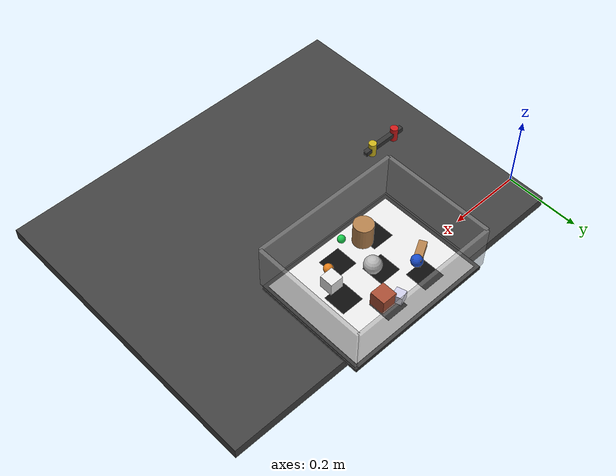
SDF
<?xml version="1.0"?>
<sdf version="1.7">
  <world name="bin_picking_world">
    <!-- Lighting -->
    <scene>
      <ambient>0.8 0.8 0.8 1.0</ambient>
      <background>0.5 0.5 0.5 1.0</background>
      <shadows>false</shadows>
    </scene>
    <light name="overhead_light" type="point">
      <pose>0.5 0 1.0 0 0 0</pose>
      <diffuse>1.0 1.0 1.0 1.0</diffuse>
      <specular>0.3 0.3 0.3 1.0</specular>
      <attenuation><range>10</range></attenuation>
    </light>

    <!-- Table -->
    <model name="work_table">
      <static>true</static>
      <pose>0.5 -0.3 0 0 0 0</pose>
      <link name="table_link">
        <collision name="table_collision">
          <geometry>
            <box>
              <size>1.0 0.8 0.03</size>
            </box>
          </geometry>
        </collision>
        <visual name="table_visual">
          <geometry>
            <box>
              <size>1.0 0.8 0.03</size>
            </box>
          </geometry>
          <material>
            <ambient>0.15 0.15 0.15 1</ambient>
            <diffuse>0.25 0.25 0.25 1</diffuse>
          </material>
        </visual>
      </link>
    </model>

    <!-- Bin (料箱) -->
    <model name="work_bin">
      <static>true</static>
      <pose>0.5 0 0.05 0 0 0</pose>
      <link name="bin_base">
        <collision name="base_collision">
          <geometry>
            <box>
              <size>0.4 0.3 0.01</size>
            </box>
          </geometry>
        </collision>
        <visual name="base_visual">
          <geometry>
            <box>
              <size>0.4 0.3 0.01</size>
            </box>
          </geometry>
          <material>
            <ambient>0.1 0.1 0.1 1</ambient>
            <diffuse>0.2 0.2 0.2 1</diffuse>
          </material>
        </visual>
      </link>
    </model>

    <!-- 料箱底板（高对比度黑白格，大号） -->
    <model name="bin_floor_white">
      <static>true</static>
      <pose>0.5 0 0.055 0 0 0</pose>
      <link name="flr"><visual name="fv"><geometry><box><size>0.38 0.28 0.002</size></box></geometry><material><ambient>0.9 0.9 0.9 1</ambient></material></visual></link></model>
    <!-- 大号黑色方块 -->
    <model name="cb_0"><static>true</static><pose>0.41 0.08 0.056 0 0 0</pose><link name="cb0"><visual name="cb0v"><geometry><box><size>0.06 0.06 0.001</size></box></geometry><material><ambient>0.05 0.05 0.05 1</ambient></material></visual></link></model>
    <model name="cb_1"><static>true</static><pose>0.53 0.08 0.056 0 0 0</pose><link name="cb1"><visual name="cb1v"><geometry><box><size>0.06 0.06 0.001</size></box></geometry><material><ambient>0.05 0.05 0.05 1</ambient></material></visual></link></model>
    <model name="cb_2"><static>true</static><pose>0.47 0 0.056 0 0 0</pose><link name="cb2"><visual name="cb2v"><geometry><box><size>0.06 0.06 0.001</size></box></geometry><material><ambient>0.05 0.05 0.05 1</ambient></material></visual></link></model>
    <model name="cb_3"><static>true</static><pose>0.59 0 0.056 0 0 0</pose><link name="cb3"><visual name="cb3v"><geometry><box><size>0.06 0.06 0.001</size></box></geometry><material><ambient>0.05 0.05 0.05 1</ambient></material></visual></link></model>
    <model name="cb_4"><static>true</static><pose>0.41 -0.08 0.056 0 0 0</pose><link name="cb4"><visual name="cb4v"><geometry><box><size>0.06 0.06 0.001</size></box></geometry><material><ambient>0.05 0.05 0.05 1</ambient></material></visual></link></model>
    <model name="cb_5"><static>true</static><pose>0.53 -0.08 0.056 0 0 0</pose><link name="cb5"><visual name="cb5v"><geometry><box><size>0.06 0.06 0.001</size></box></geometry><material><ambient>0.05 0.05 0.05 1</ambient></material></visual></link></model>

    <!-- ===== 更多小型零件覆盖底板，减少空纹理区域 ===== -->
    <!-- 小球1 -->
    <model name="part_ball_1">
      <pose>0.42 0.06 0.1 0 0 0</pose>
      <link name="b1">
        <collision name="b1c"><geometry><sphere><radius>0.015</radius></sphere></geometry></collision>
        <visual name="b1v"><geometry><sphere><radius>0.015</radius></sphere></geometry>
          <material><ambient>0.1 0.3 0.8 1</ambient></material></visual>
      </link>
    </model>
    <!-- 小球2 -->
    <model name="part_ball_2">
      <pose>0.58 -0.06 0.1 0 0 0</pose>
      <link name="b2">
        <collision name="b2c"><geometry><sphere><radius>0.012</radius></sphere></geometry></collision>
        <visual name="b2v"><geometry><sphere><radius>0.012</radius></sphere></geometry>
          <material><ambient>0.9 0.5 0.1 1</ambient></material></visual>
      </link>
    </model>
    <!-- 小球3 -->
    <model name="part_ball_3">
      <pose>0.5 -0.1 0.1 0 0 0</pose>
      <link name="b3">
        <collision name="b3c"><geometry><sphere><radius>0.01</radius></sphere></geometry></collision>
        <visual name="b3v"><geometry><sphere><radius>0.01</radius></sphere></geometry>
          <material><ambient>0.1 0.8 0.3 1</ambient></material></visual>
      </link>
    </model>
    <!-- 金属色小方块 -->
    <model name="part_metal_cube">
      <pose>0.52 0.1 0.1 0 0 0.3</pose>
      <link name="m1">
        <collision name="m1c"><geometry><box><size>0.025 0.025 0.025</size></box></geometry></collision>
        <visual name="m1v"><geometry><box><size>0.025 0.025 0.025</size></box></geometry>
          <material><ambient>0.6 0.6 0.7 1</ambient><diffuse>0.8 0.8 0.9 1</diffuse></material></visual>
      </link>
    </model>

    <!-- Bin walls -->
    <model name="bin_walls">
      <static>true</static>
      <pose>0.5 0 0.07 0 0 0</pose>
      <!-- Front wall -->
      <link name="wall_front">
        <collision name="front_collision">
          <geometry>
            <box>
              <size>0.4 0.01 0.12</size>
            </box>
          </geometry>
          <pose>0 0.15 0.06 0 0 0</pose>
        </collision>
        <visual name="front_visual">
          <geometry>
            <box>
              <size>0.4 0.01 0.12</size>
            </box>
          </geometry>
          <pose>0 0.15 0.06 0 0 0</pose>
          <material>
            <ambient>0.4 0.4 0.4 0.5</ambient>
            <diffuse>0.6 0.6 0.6 0.5</diffuse>
          </material>
        </visual>
      </link>
      <!-- Back wall -->
      <link name="wall_back">
        <collision name="back_collision">
          <geometry>
            <box>
              <size>0.4 0.01 0.12</size>
            </box>
          </geometry>
          <pose>0 -0.15 0.06 0 0 0</pose>
        </collision>
        <visual name="back_visual">
          <geometry>
            <box>
              <size>0.4 0.01 0.12</size>
            </box>
          </geometry>
          <pose>0 -0.15 0.06 0 0 0</pose>
          <material>
            <ambient>0.4 0.4 0.4 0.5</ambient>
            <diffuse>0.6 0.6 0.6 0.5</diffuse>
          </material>
        </visual>
      </link>
      <!-- Left wall -->
      <link name="wall_left">
        <collision name="left_collision">
          <geometry>
            <box>
              <size>0.01 0.3 0.12</size>
            </box>
          </geometry>
          <pose>0.2 0 0.06 0 0 0</pose>
        </collision>
        <visual name="left_visual">
          <geometry>
            <box>
              <size>0.01 0.3 0.12</size>
            </box>
          </geometry>
          <pose>0.2 0 0.06 0 0 0</pose>
          <material>
            <ambient>0.4 0.4 0.4 0.5</ambient>
            <diffuse>0.6 0.6 0.6 0.5</diffuse>
          </material>
        </visual>
      </link>
      <!-- Right wall -->
      <link name="wall_right">
        <collision name="right_collision">
          <geometry>
            <box>
              <size>0.01 0.3 0.12</size>
            </box>
          </geometry>
          <pose>-0.2 0 0.06 0 0 0</pose>
        </collision>
        <visual name="right_visual">
          <geometry>
            <box>
              <size>0.01 0.3 0.12</size>
            </box>
          </geometry>
          <pose>-0.2 0 0.06 0 0 0</pose>
          <material>
            <ambient>0.4 0.4 0.4 0.5</ambient>
            <diffuse>0.6 0.6 0.6 0.5</diffuse>
          </material>
        </visual>
      </link>
    </model>

    <!-- ===== 测试零件（不同材质、颜色、形状） ===== -->

    <!-- 砖纹方块 -->
    <model name="part_brick_cube">
      <pose>0.55 0.08 0.1 0 0 0</pose>
      <link name="link_0">
        <collision name="coll_0"><geometry><box><size>0.04 0.04 0.04</size></box></geometry></collision>
        <visual name="vis_0">
          <geometry><box><size>0.04 0.04 0.04</size></box></geometry>
          <material><script><name>Gazebo/Bricks</name></script></material>
        </visual>
      </link>
    </model>

    <!-- 木纹圆柱 -->
    <model name="part_wood_cylinder">
      <pose>0.45 -0.08 0.1 0 0 0</pose>
      <link name="link_1">
        <collision name="coll_1"><geometry><cylinder><radius>0.025</radius><length>0.06</length></cylinder></geometry></collision>
        <visual name="vis_1">
          <geometry><cylinder><radius>0.025</radius><length>0.06</length></cylinder></geometry>
          <material><script><name>Gazebo/Wood</name></script></material>
        </visual>
      </link>
    </model>

    <!-- 水泥灰球体 -->
    <model name="part_cement_sphere">
      <pose>0.5 0 0.1 0 0 0</pose>
      <link name="link_2">
        <collision name="coll_2"><geometry><sphere><radius>0.022</radius></sphere></geometry></collision>
        <visual name="vis_2">
          <geometry><sphere><radius>0.022</radius></sphere></geometry>
          <material><script><name>Gazebo/Ceiling</name></script></material>
        </visual>
      </link>
    </model>

    <!-- 白色方块 -->
    <model name="part_white_cube">
      <pose>0.6 -0.03 0.1 0 0 0</pose>
      <link name="link_3">
        <collision name="coll_3"><geometry><box><size>0.035 0.035 0.035</size></box></geometry></collision>
        <visual name="vis_3">
          <geometry><box><size>0.035 0.035 0.035</size></box></geometry>
          <material><ambient>0.8 0.8 0.8 1</ambient><diffuse>0.9 0.9 0.9 1</diffuse></material>
        </visual>
      </link>
    </model>

    <!-- 深色木纹长条 -->
    <model name="part_darkwood_bar">
      <pose>0.4 0.05 0.1 0 0 0.5</pose>
      <link name="link_4">
        <collision name="coll_4"><geometry><box><size>0.06 0.02 0.02</size></box></geometry></collision>
        <visual name="vis_4">
          <geometry><box><size>0.06 0.02 0.02</size></box></geometry>
          <material><script><name>Gazebo/WoodFloor</name></script></material>
        </visual>
      </link>
    </model>

    <!-- Stereo Camera Rig (eye-to-hand, directly above bin, looking straight down) -->
    <model name="stereo_camera">
      <static>true</static>
      <pose>0.5 0 0.5 0 0 0</pose>
      <link name="camera_rig">
        <!-- Connecting bar -->
        <visual name="bar_visual">
          <geometry><box><size>0.1 0.01 0.01</size></box></geometry>
          <material><ambient>0.2 0.2 0.2 1</ambient></material>
        </visual>

        <!-- Left camera body (red cylinder) -->
        <visual name="left_body">
          <pose>-0.03 0 0 0 0 0</pose>
          <geometry><cylinder><radius>0.008</radius><length>0.03</length></cylinder></geometry>
          <material><ambient>0.8 0.1 0.1 1</ambient></material>
        </visual>

        <!-- Right camera body (yellow cylinder) -->
        <visual name="right_body">
          <pose>0.03 0 0 0 0 0</pose>
          <geometry><cylinder><radius>0.008</radius><length>0.03</length></cylinder></geometry>
          <material><ambient>0.8 0.7 0.1 1</ambient></material>
        </visual>

        <!-- Left camera: 30mm left of center, facing down -->
        <sensor name="left_camera" type="camera">
          <pose>-0.03 0 0 0 1.5708 0</pose>
          <camera>
            <horizontal_fov>1.0472</horizontal_fov>
            <image>
              <width>1280</width>
              <height>720</height>
              <format>R8G8B8</format>
            </image>
            <clip>
              <near>0.05</near>
              <far>10</far>
            </clip>
          </camera>
          <always_on>1</always_on>
          <update_rate>30</update_rate>
          <plugin name="left_camera_controller" filename="libgazebo_ros_camera.so">
            <ros>
              <namespace>/stereo_camera</namespace>
            </ros>
            <camera_name>left</camera_name>
            <frame_name>camera_left_optical</frame_name>
            <image_topic_name>image_raw</image_topic_name>
            <camera_info_topic_name>camera_info</camera_info_topic_name>
          </plugin>
        </sensor>

        <!-- Right camera: 30mm right of center, facing down -->
        <sensor name="right_camera" type="camera">
          <pose>0.03 0 0 0 1.5708 0</pose>
          <camera>
            <horizontal_fov>1.0472</horizontal_fov>
            <image>
              <width>1280</width>
              <height>720</height>
              <format>R8G8B8</format>
            </image>
            <clip>
              <near>0.05</near>
              <far>10</far>
            </clip>
          </camera>
          <always_on>1</always_on>
          <update_rate>30</update_rate>
          <plugin name="right_camera_controller" filename="libgazebo_ros_camera.so">
            <ros>
              <namespace>/stereo_camera</namespace>
            </ros>
            <camera_name>right</camera_name>
            <frame_name>camera_right_optical</frame_name>
            <image_topic_name>image_raw</image_topic_name>
            <camera_info_topic_name>camera_info</camera_info_topic_name>
          </plugin>
        </sensor>
      </link>
    </model>

  </world>
</sdf>
